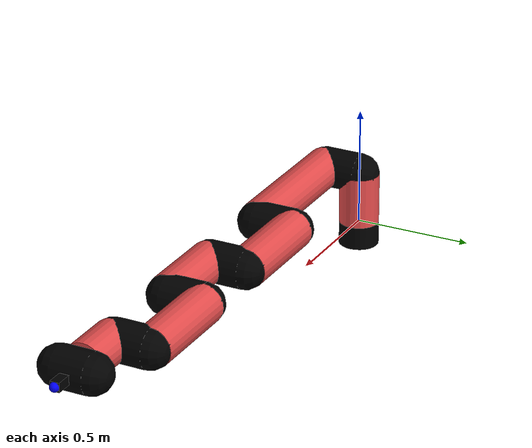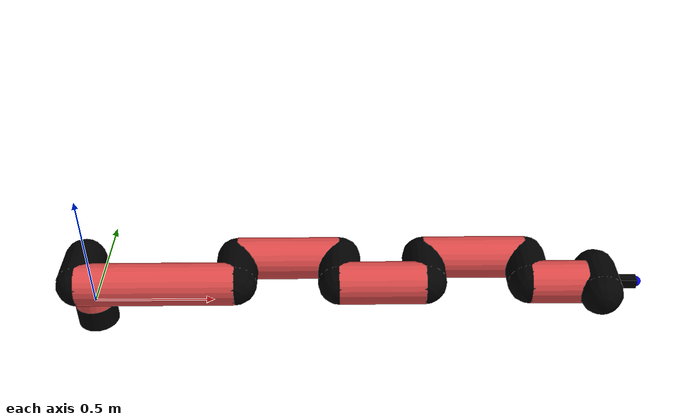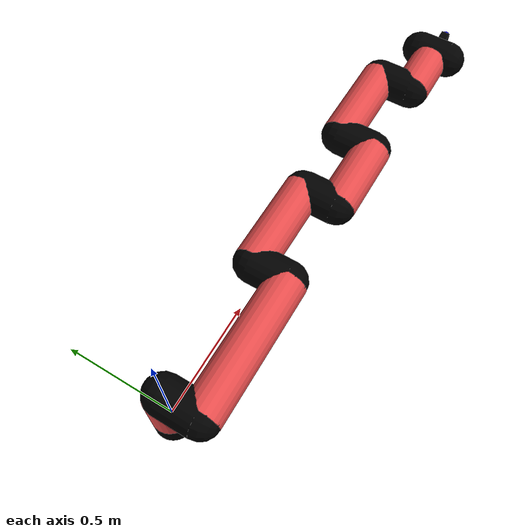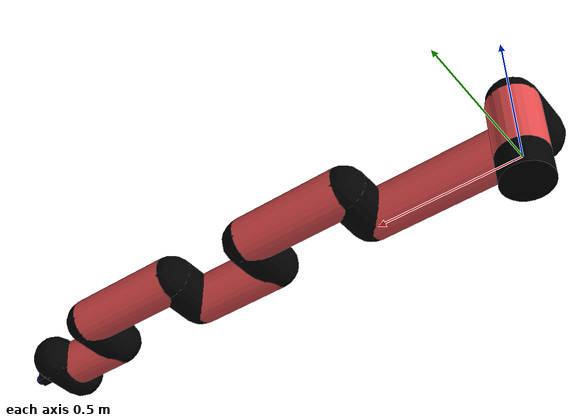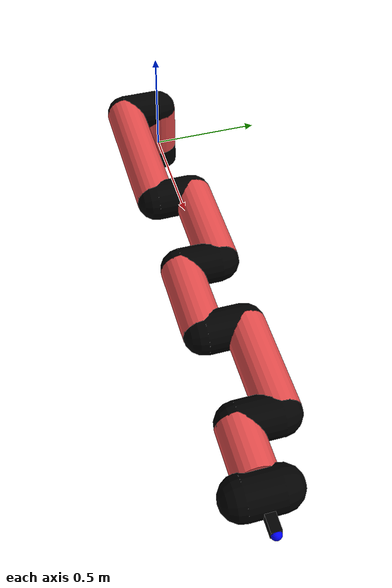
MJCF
<mujoco model="manipulator">
		<compiler angle="degree" coordinate="local" inertiafromgeom="auto" meshdir="meshes/"/>
		<option gravity="0 0 0" integrator="RK4" iterations="30" timestep="0.01"/>

		<default>
		<joint armature="1" limited="true" stiffness="10" damping="15" frictionloss="5.0"/>
		<geom conaffinity="1" condim="3" contype="1" friction=".5 .1 .1" margin="0.002"/>
		<motor ctrllimited="true"/>
		<position ctrllimited="true"/>
		</default>

		<asset>
		<texture builtin="gradient" height="100" rgb1="1.0 1.0 1.0" rgb2="1.0 1.0 1.0" type="skybox" width="100"/>
		<texture builtin="flat" height="32" name="arm_tex" rgb1="0.9 0.3 0.3" type="2d" width="32"/>
		<texture builtin="flat" height="32" name="gripper_tex" rgb1="0.0 0.0 0.0" type="cube" width="32"/>

		<material name="arm_mat" shininess="0.1" specular="0.1" texture="arm_tex"/>
		<material name="gripper_mat" shininess="1" specular="1" texture="gripper_tex"/>
		</asset>

		<worldbody>
		<light cutoff="45" diffuse=".8 .8 .8" dir="0 0.16 -1" directional="false" name="light" pos="0 -2.0 8.0" specular="0.3 0.3 0.3"/>

		<body name="base_link" pos="0 0 -0.1">
		<geom fromto="0 0 0 0 0 0.1" material="arm_mat" name="base_link" rgba="0.0 0.0 0.0 1" size="0.085" type="cylinder"/>
		</body>

		<body name="l1" pos="0 0 0">
<geom fromto="0 0 0 0 0 0.22" material="arm_mat" name="l1" rgba="0.9 0.3 0.3 1" size="0.085" type="cylinder"/>
<geom fromto="0 0 0.22 0 -0.16 0.22" material="arm_mat" name="l1_ex" rgba="0.0 0.0 0.0 1" size="0.085" type="capsule"/>
<joint axis="0 0 1" name="j1" pos="0 0 0" range="-90 90" damping="35.52" frictionloss="6.33"/>

<body name="l2" pos="0 -0.16 0.22">
<geom fromto="0 0 0 0.62 0 0" material="arm_mat" name="l2" rgba="0.9 0.3 0.3 1" size="0.085" type="cylinder"/>
<geom fromto="0.62 0 0 0.62 0.16 0" material="arm_mat" name="l2_ex" rgba="0.0 0.0 0.0 1" size="0.085" type="capsule"/>
<joint axis="0.0 1.0 0.0" name="j2" pos="0 0 0" range="-90 60" damping="33.08" frictionloss="8.14"/>

<body name="l3" pos="0.62 0.16 0">
<geom fromto="0 0 0 0.41 0 0" material="arm_mat" name="l3" rgba="0.9 0.3 0.3 1" size="0.085" type="cylinder"/>
<geom fromto="0.41 0 0 0.41 -0.16 0" material="arm_mat" name="l3_ex" rgba="0.0 0.0 0.0 1" size="0.085" type="capsule"/>
<joint axis="0.0 1.0 0.0" name="j3" pos="0 0 0" range="-30 60" damping="21.34" frictionloss="12.21"/>

<body name="l4" pos="0.41 -0.16 0">
<geom fromto="0 0 0 0.34 0 0" material="arm_mat" name="l4" rgba="0.9 0.3 0.3 1" size="0.085" type="cylinder"/>
<geom fromto="0.34 0 0 0.34 0.16 0" material="arm_mat" name="l4_ex" rgba="0.0 0.0 0.0 1" size="0.085" type="capsule"/>
<joint axis="0.0 1.0 0.0" name="j4" pos="0 0 0" range="-30 60" damping="34.81" frictionloss="9.56"/>

<body name="l5" pos="0.34 0.16 0">
<geom fromto="0 0 0 0.41 0 0" material="arm_mat" name="l5" rgba="0.9 0.3 0.3 1" size="0.085" type="cylinder"/>
<geom fromto="0.41 0 0 0.41 -0.16 0" material="arm_mat" name="l5_ex" rgba="0.0 0.0 0.0 1" size="0.085" type="capsule"/>
<joint axis="0.0 1.0 0.0" name="j5" pos="0 0 0" range="-30 60" damping="27.18" frictionloss="12.42"/>

<body name="l6" pos="0.41 -0.16 0">
<geom fromto="0 0 0 0.22 0 0" material="arm_mat" name="l6" rgba="0.9 0.3 0.3 1" size="0.085" type="cylinder"/>
<joint axis="0.0 1.0 0.0" name="j6" pos="0 0 0" range="-30 60" damping="25.81" frictionloss="7.01"/>

<body name="gripper" pos="0.22 0 0">
<geom fromto="0.05 -0.07 0 0.05 0.07 0" material="gripper_mat" name="gripper" rgba="0.0 0.0 0.0 1" size="0.085" type="capsule"/><joint axis="1 0 0" name="j7" pos="0 0 0" range="-90 90" damping="15" frictionloss="5.0"/><body name="finger" pos="0.1 0 0">
<geom fromto="0 0.0 0 0.1 0.0 0" material="gripper_mat" name="finger" rgba="0.0 0.0 0.0 1" size="0.020 0.06 0.06" type="box"/>
</body>
<site name="current" pos="0.2 0. 0.0" rgba="0. 0. 1.0 1" size="0.02" type="sphere"/>
</body>
</body>
</body>
</body>
</body>
</body>
</body>
</worldbody>
<actuator>
<motor ctrllimited="true" ctrlrange="-1.0 1.0" joint="j1" gear="110.8"/>
<motor ctrllimited="true" ctrlrange="-1.0 1.0" joint="j2" gear="106.42"/>
<motor ctrllimited="true" ctrlrange="-1.0 1.0" joint="j3" gear="101.88"/>
<motor ctrllimited="true" ctrlrange="-1.0 1.0" joint="j4" gear="107.16"/>
<motor ctrllimited="true" ctrlrange="-1.0 1.0" joint="j5" gear="75.71"/>
<motor ctrllimited="true" ctrlrange="-1.0 1.0" joint="j6" gear="106.17"/>
<motor ctrllimited="true" ctrlrange="-1.0 1.0" joint="j7" gear="80"/>
</actuator>
</mujoco>
